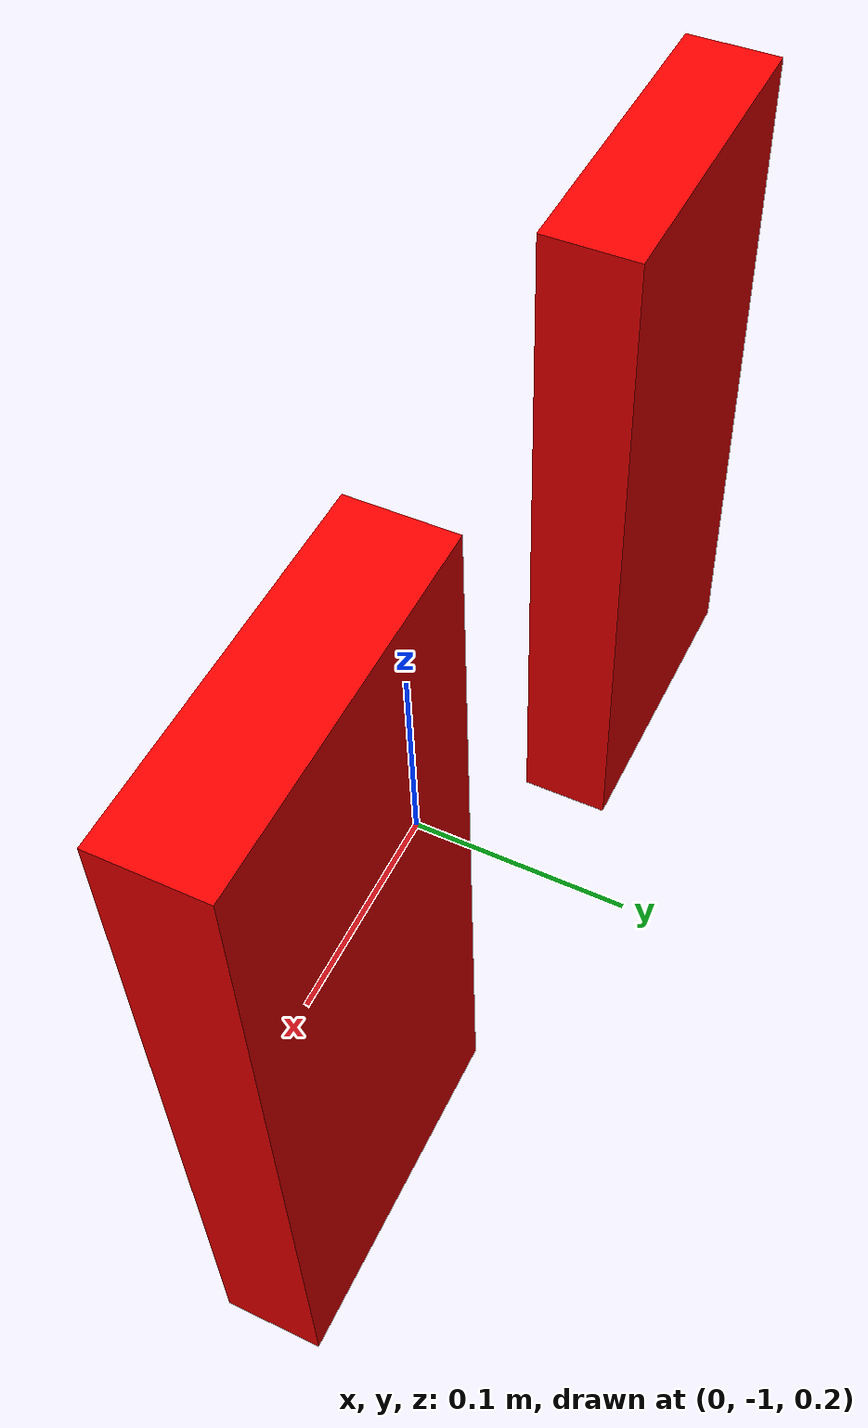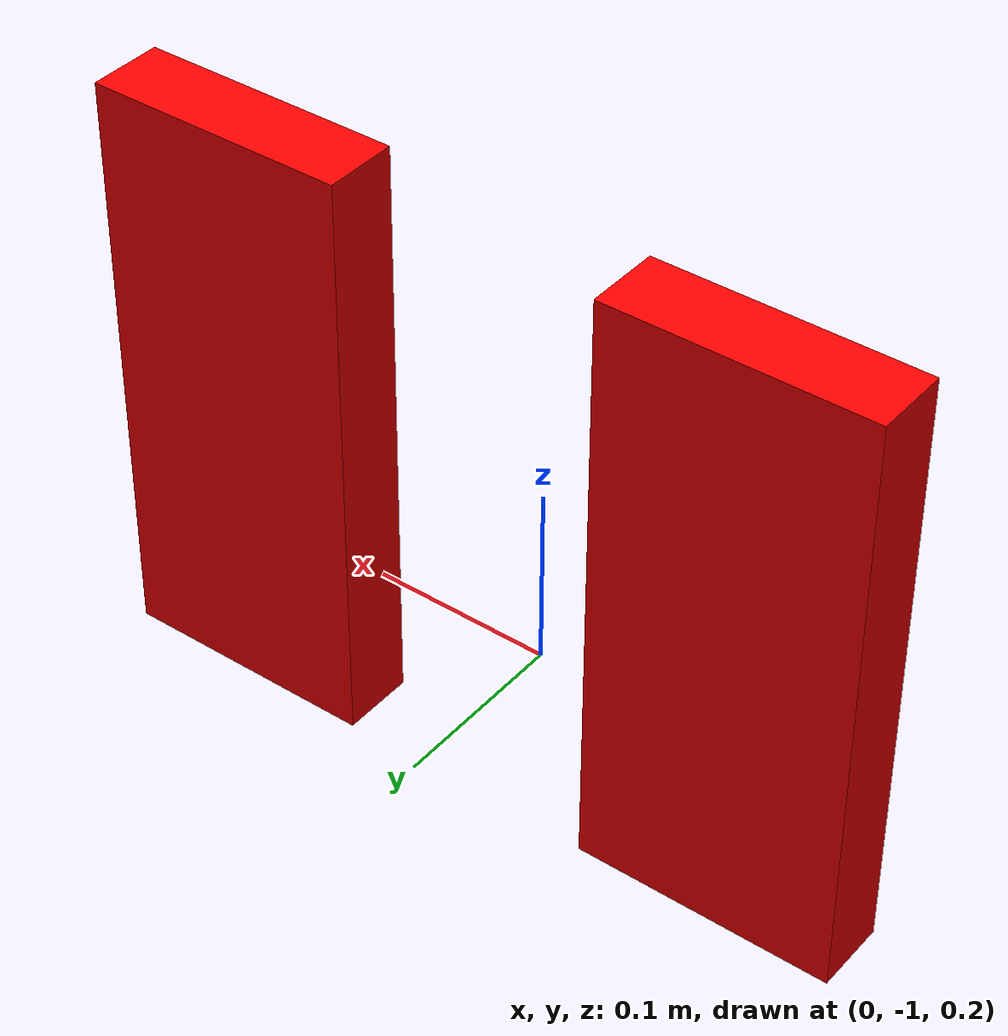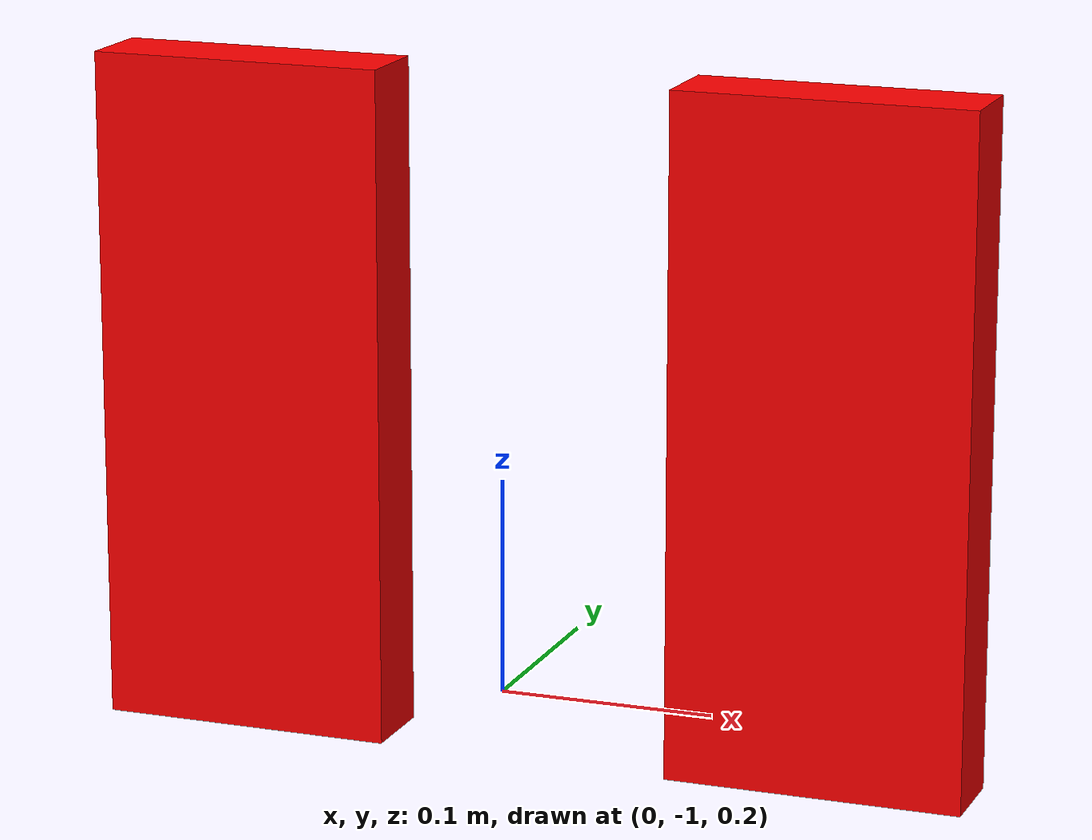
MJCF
<mujoco model="KF_NJIT_Rehab_Exo">
  <compiler angle="radian"/>

  <worldbody>
    <body name="base">
      <inertial pos="0 0 0" mass="0.01" diaginertia="0.0001 0.0001 0.0001"/>

      <body name="exo_pelvis" quat="0.707141 0 -0.707073 0">
        <inertial pos="0.164969 -0.016465 -0.00031201" quat="0.743135 -0.000846023 -0.000437874 0.669141" mass="3.40529" diaginertia="0.140633 0.107645 0.0409716"/>

        <body name="r_exo_femur" pos="0.25 -0.06 0.21">
          <inertial pos="-0.00012287 -0.205637 0.0391034" quat="0.70037 0.708893 0.0600663 -0.0578234" mass="2.77725" diaginertia="0.0379443 0.0352615 0.0041924"/>
          <joint name="r_exo_femur" pos="0 0 0" axis="0 0 1" range="-1.309 1.309" actuatorfrcrange="-100 100"/>

          <body name="r_exo_tibia" pos="0 -0.41 0">
            <inertial pos="0.00130324 -0.0640757 0.0163233" quat="0.660735 0.7506 -0.000513906 -0.00529609" mass="0.60426" diaginertia="0.00549748 0.00541102 0.000255628"/>
            <joint name="r_exo_tibia" pos="0 0 0" axis="0 0 1" range="-2.094 0" actuatorfrcrange="-100 100"/>

            <body name="r_shank_support" pos="0 -0.25 0">
              <inertial pos="-0.0220563 -0.0501763 -0.0332489" quat="0.940229 0.285066 0.178494 0.0533551" mass="0.24824" diaginertia="0.00101633 0.000827772 0.000328839"/>

              <body name="r_ankle_coupling" pos="0 -0.129 0">
                <inertial pos="0.0270888 -0.0211255 -0.0183098" quat="0.464459 0.388897 0.588349 0.535615" mass="0.194678" diaginertia="0.000918354 0.000829915 0.000148771"/>
                <joint name="r_ankle_coupling" pos="0 0 0" axis="0 0 1" range="-0.6981 0.2618" actuatorfrcrange="-100 100"/>

                <body name="r_foot" pos="0.11 0.001 -0.0699999" quat="0.989506 0 0 0.144492">
                  <inertial pos="-0.0647188 -0.0863198 0.00643328" quat="0.669598 0.404663 0.560134 0.272277" mass="1.39879" diaginertia="0.0171733 0.016392 0.00331607"/>
                  <joint name="r_foot" pos="0 0 0" axis="1 0 0" range="-0.2618 0.2618" actuatorfrcrange="-100 100"/>

                  <body name="r_foot_end" pos="-0.175 0 0">
                    <inertial pos="0 0 0" mass="1e-06" diaginertia="0.00010572 0.00010572 0.00010572"/>

                  </body>

                  <body name="r_DM_universalJoint" pos="-0.2295 -0.0188 -0.0449999" quat="0.989506 -1.12116e-06 1.50458e-06 -0.144494">
                    <inertial pos="0.0155966 7.195e-05 0.00034455" quat="0.495351 0.504606 0.495351 0.504606" mass="0.0206009" diaginertia="4.33037e-06 3.24963e-06 3e-06"/>

                    <body name="r_DM_ballScrewEnd">
                      <inertial pos="0.00013012 0.00788036 0.00054796" quat="0.49614 0.50383 -0.50383 0.49614" mass="0.00876173" diaginertia="1.20015e-06 1.18e-06 5.49846e-07"/>

                      <body name="r_DM_ballScrew">
                        <inertial pos="0.00047747 0.120298 0.00037389" quat="0.507178 0.505888 -0.494079 0.49268" mass="0.19714" diaginertia="0.00068019 0.000680185 3.6251e-06"/>

                        <body name="r_DM_ballScrewNut" pos="0 0.14732 0">
                          <inertial pos="0.00056724 -0.00759078 0.00037692" quat="0.000987569 0.707106 -0.000987569 0.707106" mass="0.109522" diaginertia="2.077e-05 1.891e-05 1.533e-05"/>

                        </body>
                      </body>
                    </body>
                  </body>
                  <body name="r_DL_universalJoint" pos="-0.2295 -0.0188 0.0439999" quat="0.989506 -1.12116e-06 1.50458e-06 -0.144494">
                    <inertial pos="0.0155966 0.0001205 0.00021207" quat="0.504606 0.495351 0.504606 0.495351" mass="0.0206008" diaginertia="4.33037e-06 3.24963e-06 3e-06"/>
                    <body name="r_DL_ballScrewEnd">
                      <inertial pos="0.00012696 0.00793221 5.843e-05" quat="0.50383 0.49614 -0.49614 0.50383" mass="0.00876176" diaginertia="1.20015e-06 1.18e-06 5.49846e-07"/>
                      <body name="r_DL_ballScrew">
                        <inertial pos="0.00013664 0.120337 0.00013534" quat="0.541881 0.541533 -0.454274 0.454689" mass="0.19714" diaginertia="0.00068019 0.00068019 3.6296e-06"/>
                        <body name="r_DL_ballScrewNut" pos="0 0.14732 0">
                          <inertial pos="0.00013223 -0.00755153 0.00010991" quat="0 0.707107 0 0.707107" mass="0.109522" diaginertia="2.077e-05 1.891e-05 1.532e-05"/>
                        </body>
                      </body>
                    </body>
                  </body>
                  <body name="r_foot_ground" pos="0 -0.135 0" quat="0.989506 -1.12116e-06 1.50458e-06 -0.144494">
                    <inertial pos="0 0 0" mass="1e-06" diaginertia="1e-06 1e-06 1e-06"/>
                    <geom name="r_foot" size="0.16 0.02 0.07" pos="-0.08 0.02 0" type="box" rgba="1 0 0 1"/>

                  </body>
                </body>
              </body>
              <body name="r_PM-universalJoint" pos="-0.0929998 -0.015 -0.128">
                <inertial pos="0.0149574 0.0007084 0.00071015" quat="0.503853 0.50787 0.491406 0.49671" mass="0.0185407" diaginertia="4.1008e-06 3.02991e-06 2.82929e-06"/>

                <body name="r_PM_motor">
                  <inertial pos="-0.0349995 -0.00998801 0.00107767" quat="0.429187 0.567212 -0.419495 0.563998" mass="0.710493" diaginertia="0.00149028 0.00137359 0.000459236"/>

                  <body name="r_PM_motor_gear" pos="-0.0549999 -0.0499999 -0.015">
                    <inertial pos="0.00037476 0.00202995 0.00117121" quat="0.707107 0.707107 0 0" mass="0.00985698" diaginertia="1.16e-06 1.16e-06 1.15e-06"/>
                  </body>

                  <body name="r_PM_ballScrewGear" pos="0 -0.0499999 0">
                    <inertial pos="0.00018822 -0.00596056 0.00039574" quat="0.707105 0.00134941 -0.00134941 0.707105" mass="0.0142379" diaginertia="5.18004e-06 3.6e-06 2.55996e-06"/>
                  </body>

                </body>
              </body>
              <body name="r_PL-universalJoint" pos="-0.0929998 -0.015 -0.012">
                <inertial pos="0.0149574 0.0006754 -0.00118204" quat="0.505866 0.505866 0.494064 0.494064" mass="0.0185407" diaginertia="4.10071e-06 3.03e-06 2.82929e-06"/>

                <body name="r_PL_motor">
                  <inertial pos="-0.0349995 -0.00998801 0.00107767" quat="0.429187 0.567212 -0.419495 0.563998" mass="0.710493" diaginertia="0.00149028 0.00137359 0.000459236"/>

                  <body name="r_PL_motor_gear" pos="-0.0549999 -0.0499999 -0.015">
                    <inertial pos="0.00038635 0.00184043 -6.847e-05" quat="0.707107 0.707107 0 0" mass="0.00985698" diaginertia="1.16e-06 1.16e-06 1.15e-06"/>
                  </body>

                  <body name="r_PL_ballScrewGear" pos="0 -0.0499999 0">
                    <inertial pos="0.00019033 -0.00599488 -0.00072949" quat="0.707105 -0.00134941 0.00134941 0.707105" mass="0.0142379" diaginertia="5.18004e-06 3.6e-06 2.55996e-06"/>

                  </body>
                </body>
              </body>
            </body>
          </body>
        </body>
        <body name="l_exo_femur" pos="0.25 -0.06 -0.21">
          <inertial pos="-0.00012287 -0.205637 -0.0391034" quat="0.708893 0.70037 -0.0578234 0.0600663" mass="2.77725" diaginertia="0.0379443 0.0352615 0.0041924"/>
          <joint name="l_exo_femur" pos="0 0 0" axis="0 0 1" range="-1.309 1.309" actuatorfrcrange="-100 100"/>
          <body name="l_exo_tibia" pos="0 -0.41 0">
            <inertial pos="0.00130324 -0.0640757 -0.0163233" quat="0.7506 0.660735 -0.00529609 -0.000513906" mass="0.60426" diaginertia="0.00549748 0.00541102 0.000255628"/>
            <joint name="l_exo_tibia" pos="0 0 0" axis="0 0 1" range="-2.094 0" actuatorfrcrange="-100 100"/>
            <body name="l_shank_support" pos="0 -0.25 0">
              <inertial pos="-0.0220563 -0.0501763 0.0332489" quat="0.940229 -0.285066 -0.178494 0.0533551" mass="0.24824" diaginertia="0.00101633 0.000827772 0.000328839"/>
              <body name="l_ankle_coupling" pos="0 -0.129 0">
                <inertial pos="0.0270888 -0.0211255 0.0183098" quat="0.388897 0.464459 0.535615 0.588349" mass="0.194678" diaginertia="0.000918354 0.000829915 0.000148771"/>
                <joint name="l_ankle_coupling" pos="0 0 0" axis="0 0 1" range="-0.6981 0.2618" actuatorfrcrange="-100 100"/>
                <body name="l_foot" pos="0.11 0.001 0.0699999" quat="0.989506 0 0 0.144492">
                  <inertial pos="-0.0647188 -0.0863198 -0.00643328" quat="0.404663 0.669598 0.272277 0.560134" mass="1.39879" diaginertia="0.0171733 0.016392 0.00331607"/>
                  <joint name="l_foot" pos="0 0 0" axis="-1 0 0" range="-0.2618 0.2618" actuatorfrcrange="-100 100"/>
                  <body name="l_foot_end" pos="-0.175 0 0">
                    <inertial pos="0 0 0" mass="1e-06" diaginertia="0.00010572 0.00010572 0.00010572"/>
                  </body>
                  <body name="l_DM_universalJoint" pos="-0.2295 -0.0188 0.0449999" quat="0.989506 -1.12116e-06 1.50458e-06 -0.144494">
                    <inertial pos="0.0155966 7.195e-05 -0.00034455" quat="0.504606 0.495351 0.504606 0.495351" mass="0.0206009" diaginertia="4.33037e-06 3.24963e-06 3e-06"/>
                    <body name="l_DM_ballScrewEnd">
                      <inertial pos="0.00013012 0.00788036 -0.00054796" quat="0.50383 0.49614 -0.49614 0.50383" mass="0.00876173" diaginertia="1.20015e-06 1.18e-06 5.49846e-07"/>
                      <body name="l_DM_ballScrew">
                        <inertial pos="0.00047747 0.120298 -0.00037389" quat="0.494079 0.49268 -0.507178 0.505888" mass="0.19714" diaginertia="0.00068019 0.000680185 3.6251e-06"/>
                        <body name="l_DM_ballScrewNut" pos="0 0.14732 0">
                          <inertial pos="0.00056724 -0.00759078 -0.00037692" quat="0.000987569 0.707106 -0.000987569 0.707106" mass="0.109522" diaginertia="2.077e-05 1.891e-05 1.533e-05"/>
                        </body>
                      </body>
                    </body>
                  </body>
                  <body name="l_DL_universalJoint" pos="-0.2295 -0.0188 -0.0439999" quat="0.989506 -1.12116e-06 1.50458e-06 -0.144494">
                    <inertial pos="0.0155966 0.0001205 -0.00021207" quat="0.495351 0.504606 0.495351 0.504606" mass="0.0206008" diaginertia="4.33037e-06 3.24963e-06 3e-06"/>
                    <body name="l_DL_ballScrewEnd">
                      <inertial pos="0.00012696 0.00793221 -5.843e-05" quat="0.49614 0.50383 -0.50383 0.49614" mass="0.00876176" diaginertia="1.20015e-06 1.18e-06 5.49846e-07"/>
                      <body name="l_DL_ballScrew">
                        <inertial pos="0.00013664 0.120337 -0.00013534" quat="0.454274 0.454689 -0.541881 0.541533" mass="0.19714" diaginertia="0.00068019 0.00068019 3.6296e-06"/>
                        <body name="l_DL_ballScrewNut" pos="0 0.14732 0">
                          <inertial pos="0.00013223 -0.00755153 -0.00010991" quat="0 0.707107 0 0.707107" mass="0.109522" diaginertia="2.077e-05 1.891e-05 1.532e-05"/>
                        </body>
                      </body>
                    </body>
                  </body>
                  <body name="l_foot_ground" pos="0 -0.135 0" quat="0.989506 -1.12116e-06 1.50458e-06 -0.144494">
                    <inertial pos="0 0 0" mass="1e-06" diaginertia="1e-06 1e-06 1e-06"/>
                    <geom name="l_foot" size="0.16 0.02 0.07" pos="-0.08 0.02 0" type="box" rgba="1 0 0 1"/>
                  </body>
                </body>
              </body>
              <body name="l_PM-universalJoint" pos="-0.0929998 -0.015 0.128">
                <inertial pos="0.0149574 0.0007084 -0.00071015" quat="0.50787 0.503853 0.49671 0.491406" mass="0.0185407" diaginertia="4.1008e-06 3.02991e-06 2.82929e-06"/>
                <body name="l_PM_motor">
                  <inertial pos="-0.0349995 -0.00998801 -0.00107767" quat="0.419495 0.563998 -0.429187 0.567212" mass="0.710493" diaginertia="0.00149028 0.00137359 0.000459236"/>
                  <body name="l_PM_motor_gear" pos="-0.0549999 -0.0499999 0.015">
                    <inertial pos="0.00037476 0.00202995 -0.00117121" quat="0.707107 0.707107 0 0" mass="0.00985698" diaginertia="1.16e-06 1.16e-06 1.15e-06"/>
                  </body>
                  <body name="l_PM_ballScrewGear" pos="0 -0.0499999 0">
                    <inertial pos="0.00018822 -0.00596056 -0.00039574" quat="0.707105 -0.00134941 0.00134941 0.707105" mass="0.0142379" diaginertia="5.18004e-06 3.6e-06 2.55996e-06"/>
                  </body>
                </body>
              </body>
              <body name="l_PL-universalJoint" pos="-0.0929998 -0.015 0.012">
                <inertial pos="0.0149574 0.0006754 0.00118204" quat="0.505866 0.505866 0.494064 0.494064" mass="0.0185407" diaginertia="4.10071e-06 3.03e-06 2.82929e-06"/>
                <body name="l_PL_motor">
                  <inertial pos="-0.0349995 -0.00998801 -0.00107767" quat="0.419495 0.563998 -0.429187 0.567212" mass="0.710493" diaginertia="0.00149028 0.00137359 0.000459236"/>
                  <body name="l_PL_motor_gear" pos="-0.0549999 -0.0499999 0.015">
                    <inertial pos="0.00038635 0.00184043 6.847e-05" quat="0.707107 0.707107 0 0" mass="0.00985698" diaginertia="1.16e-06 1.16e-06 1.15e-06"/>
                  </body>
                  <body name="l_PL_ballScrewGear" pos="0 -0.0499999 0">
                    <inertial pos="0.00019033 -0.00599488 0.00072949" quat="0.707105 0.00134941 -0.00134941 0.707105" mass="0.0142379" diaginertia="5.18004e-06 3.6e-06 2.55996e-06"/>
                  </body>
                </body>
              </body>
            </body>
          </body>
        </body>
        <body name="Battery">
          <inertial pos="-0.0292753 0.0823604 -0.00041407" quat="0.988544 -0.000723055 0.000764577 -0.150931" mass="2.2" diaginertia="0.00921543 0.00786844 0.00423976"/>
        </body>
      </body>
    </body>
  </worldbody>
</mujoco>
